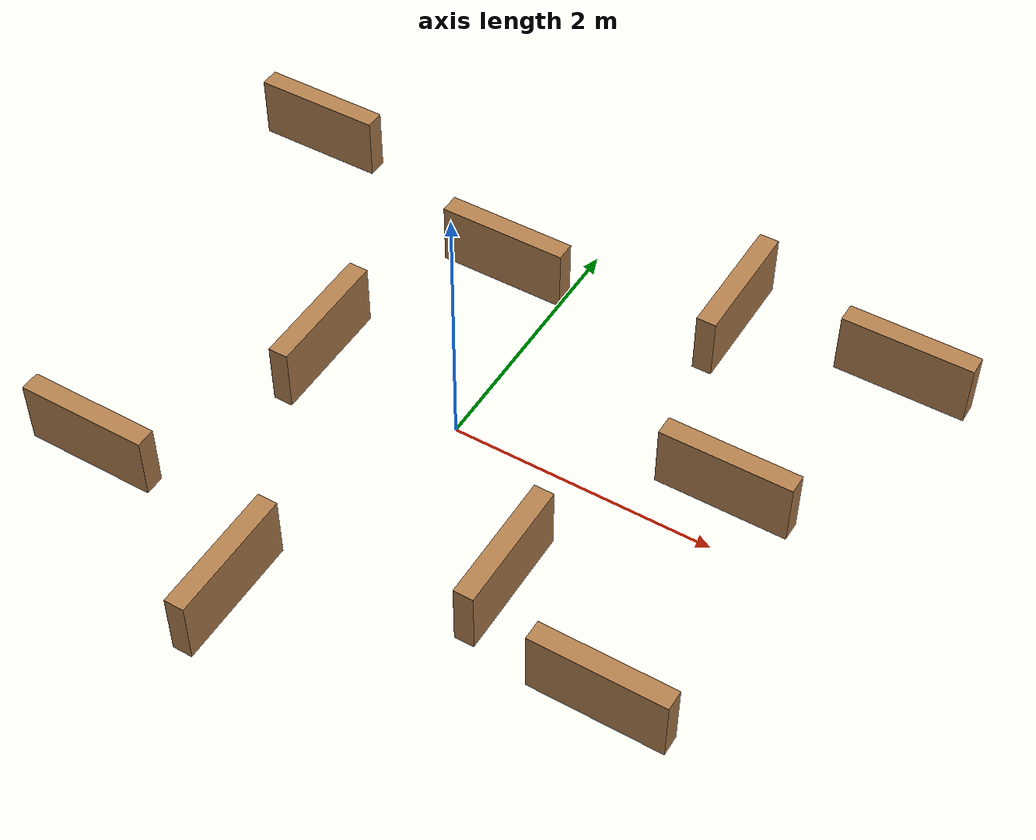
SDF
<?xml version='1.0'?>
<sdf version='1.6'>
  <model name='inner_walls'>
    <pose frame=''>0 0 0 0 0 0</pose>
    <link name='inner_wall_1'>
      <collision name='inner_wall_1_collision'>
        <geometry>
          <box>
            <size>1 0.15 0.5</size>
          </box>
        </geometry>
        <pose frame=''>0 0 0.25 0 -0 0</pose>
      </collision>
      <visual name='inner_wall_visual'>
        <pose frame=''>0 0 0.25 0 -0 0</pose>
        <geometry>
          <box>
            <size>1 0.15 0.5</size>
          </box>
        </geometry>
        <material>
          <script>
            <uri>file://media/materials/scripts/gazebo.material</uri>
            <name>Gazebo/Wood</name>
          </script>
          <ambient>1 1 1 1</ambient>
        </material>
      </visual>
      <pose frame=''>-2.0 -1.5 0 0 -0 0</pose>
    </link>

    <link name='inner_wall_1_alternative'>
      <collision name='inner_wall_1_collision'>
        <geometry>
          <box>
            <size>1 0.15 0.5</size>
          </box>
        </geometry>
        <pose frame=''>0 0 0.25 0 -0 0</pose>
      </collision>
      <visual name='inner_wall_alternative_visual'>
        <pose frame=''>0 0 0.25 0 -0 0</pose>
        <geometry>
          <box>
            <size>1 0.15 0.5</size>
          </box>
        </geometry>
        <material>
          <script>
            <uri>file://media/materials/scripts/gazebo.material</uri>
            <name>Gazebo/Wood</name>
          </script>
          <ambient>1 1 1 1</ambient>
        </material>
      </visual>
      <pose frame=''>2.0 -1.5 0 0 -0 0</pose>
    </link>

    <link name='inner_wall_1_alternative_2'>
      <collision name='inner_wall_1_collision'>
        <geometry>
          <box>
            <size>1 0.15 0.5</size>
          </box>
        </geometry>
        <pose frame=''>0 0 0.25 0 -0 0</pose>
      </collision>
      <visual name='inner_wall_alternative_2_visual'>
        <pose frame=''>0 0 0.25 0 -0 0</pose>
        <geometry>
          <box>
            <size>1 0.15 0.5</size>
          </box>
        </geometry>
        <material>
          <script>
            <uri>file://media/materials/scripts/gazebo.material</uri>
            <name>Gazebo/Wood</name>
          </script>
          <ambient>1 1 1 1</ambient>
        </material>
      </visual>
      <pose frame=''>-2.5 2.0 0 0 -0 0</pose>
    </link>

    <link name='inner_wall_1_alternative_3'>
      <collision name='inner_wall_1_collision'>
        <geometry>
          <box>
            <size>1 0.15 0.5</size>
          </box>
        </geometry>
        <pose frame=''>0 0 0.25 0 -0 0</pose>
      </collision>
      <visual name='inner_wall_alternative_3_visual'>
        <pose frame=''>0 0 0.25 0 -0 0</pose>
        <geometry>
          <box>
            <size>1 0.15 0.5</size>
          </box>
        </geometry>
        <material>
          <script>
            <uri>file://media/materials/scripts/gazebo.material</uri>
            <name>Gazebo/Wood</name>
          </script>
          <ambient>1 1 1 1</ambient>
        </material>
      </visual>
      <pose frame=''>2.5 2.0 0 0 -0 0</pose>
    </link>

    <link name='inner_wall_2'>
      <collision name='inner_wall_2_collision'>
        <geometry>
          <box>
            <size>1 0.15 0.5</size>
          </box>
        </geometry>
        <pose frame=''>0 0 0.25 0 -0 0</pose>
      </collision>
      <visual name='inner_wall_2_visual'>
        <pose frame=''>0 0 0.25 0 -0 0</pose>
        <geometry>
          <box>
            <size>1 0.15 0.5</size>
          </box>
        </geometry>
        <material>
          <script>
            <uri>file://media/materials/scripts/gazebo.material</uri>
            <name>Gazebo/Wood</name>
          </script>
          <ambient>1 1 1 1</ambient>
        </material>
      </visual>
      <pose frame=''>-0.5 -2.0 0 0 0 -1.5708</pose>
    </link>
    <link name='inner_wall_3'>
      <collision name='inner_wall_3_collision'>
        <geometry>
          <box>
            <size>1 0.15 0.5</size>
          </box>
        </geometry>
        <pose frame=''>0 0 0.25 0 -0 0</pose>
      </collision>
      <visual name='inner_wall_3_visual'>
        <pose frame=''>0 0 0.25 0 -0 0</pose>
        <geometry>
          <box>
            <size>1 0.15 0.5</size>
          </box>
        </geometry>
        <material>
          <script>
            <uri>file://media/materials/scripts/gazebo.material</uri>
            <name>Gazebo/Wood</name>
          </script>
          <ambient>1 1 1 1</ambient>
        </material>
      </visual>
      <pose frame=''>1.0 -1.0 0 0 -0 1.5708</pose>
    </link>
    <link name='inner_wall_4'>
      <collision name='inner_wall_4_collision'>
        <geometry>
          <box>
            <size>1 0.15 0.5</size>
          </box>
        </geometry>
        <pose frame=''>0 0 0.25 0 -0 0</pose>
      </collision>
      <visual name='inner_wall_4_visual'>
        <pose frame=''>0 0 0.25 0 -0 0</pose>
        <geometry>
          <box>
            <size>1 0.15 0.5</size>
          </box>
        </geometry>
        <material>
          <script>
            <uri>file://media/materials/scripts/gazebo.material</uri>
            <name>Gazebo/Wood</name>
          </script>
          <ambient>1 1 1 1</ambient>
        </material>
      </visual>
      <pose frame=''>1.2 1.9 0 0 0 -1.5708</pose>
    </link>
    <link name='inner_wall_5'>
      <collision name='inner_wall_5_collision'>
        <geometry>
          <box>
            <size>1 0.15 0.5</size>
          </box>
        </geometry>
        <pose frame=''>0 0 0.25 0 -0 0</pose>
      </collision>
      <visual name='inner_wall_5_visual'>
        <pose frame=''>0 0 0.25 0 -0 0</pose>
        <geometry>
          <box>
            <size>1 0.15 0.5</size>
          </box>
        </geometry>
        <material>
          <script>
            <uri>file://media/materials/scripts/gazebo.material</uri>
            <name>Gazebo/Wood</name>
          </script>
          <ambient>1 1 1 1</ambient>
        </material>
      </visual>
      <pose frame=''>1.9 0.4 0 0 -0 0</pose>
    </link>
    <link name='inner_wall_6'>
      <collision name='inner_wall_6_collision'>
        <geometry>
          <box>
            <size>1 0.15 0.5</size>
          </box>
        </geometry>
        <pose frame=''>0 0 0.25 0 -0 0</pose>
      </collision>
      <visual name='inner_wall_6_visual'>
        <pose frame=''>0 0 0.25 0 -0 0</pose>
        <geometry>
          <box>
            <size>1 0.15 0.5</size>
          </box>
        </geometry>
        <material>
          <script>
            <uri>file://media/materials/scripts/gazebo.material</uri>
            <name>Gazebo/Wood</name>
          </script>
          <ambient>1 1 1 1</ambient>
        </material>
      </visual>
      <pose frame=''>-0.5 1.5 0 0 -0 0</pose>
    </link>
    <link name='inner_wall_7'>
      <collision name='inner_wall_7_collision'>
        <geometry>
          <box>
            <size>1 0.15 0.5</size>
          </box>
        </geometry>
        <pose frame=''>0 0 0.25 0 -0 0</pose>
      </collision>
      <visual name='inner_wall_7_visual'>
        <pose frame=''>0 0 0.25 0 -0 0</pose>
        <geometry>
          <box>
            <size>1 0.15 0.5</size>
          </box>
        </geometry>
        <material>
          <script>
            <uri>file://media/materials/scripts/gazebo.material</uri>
            <name>Gazebo/Wood</name>
          </script>
          <ambient>1 1 1 1</ambient>
        </material>
      </visual>
      <pose frame=''>-1.2 0.092 0 0 0 -1.5708</pose>
    </link>
    <static>1</static>
  </model>
</sdf>
